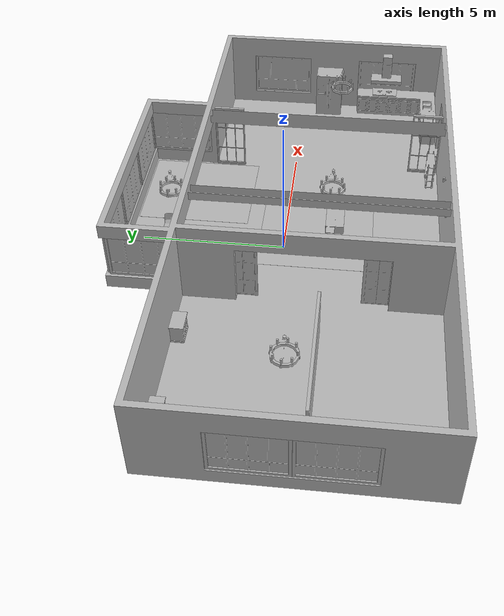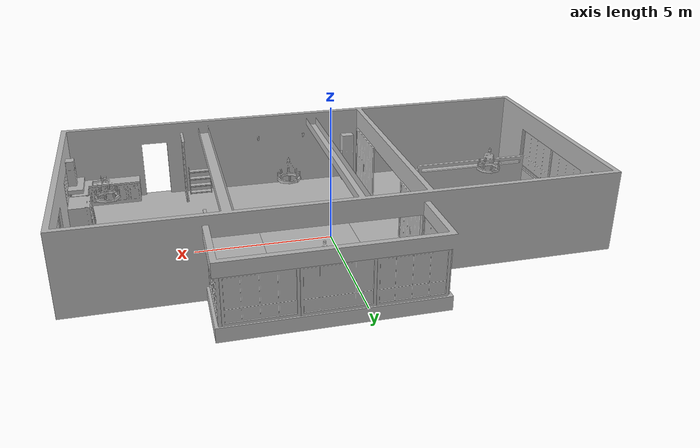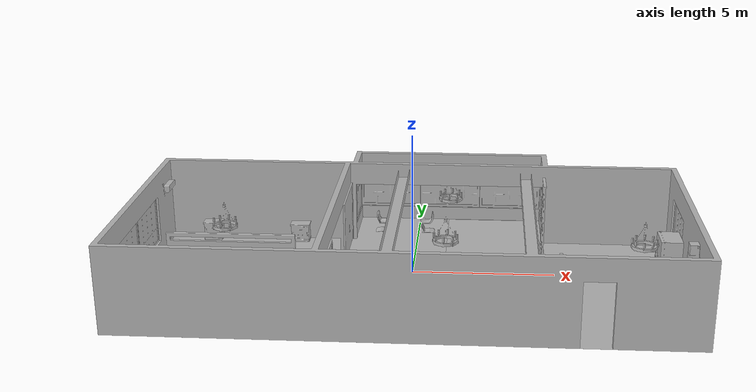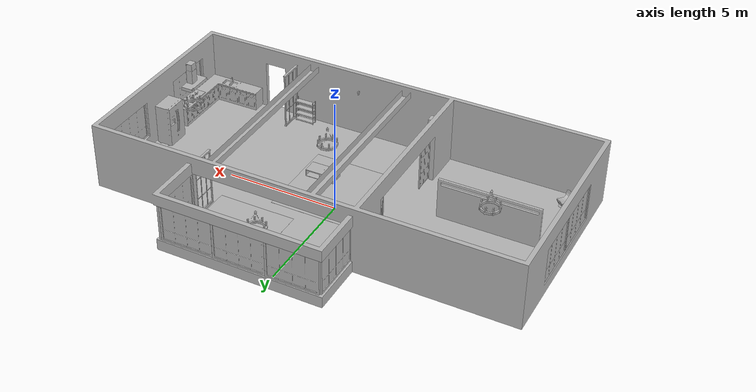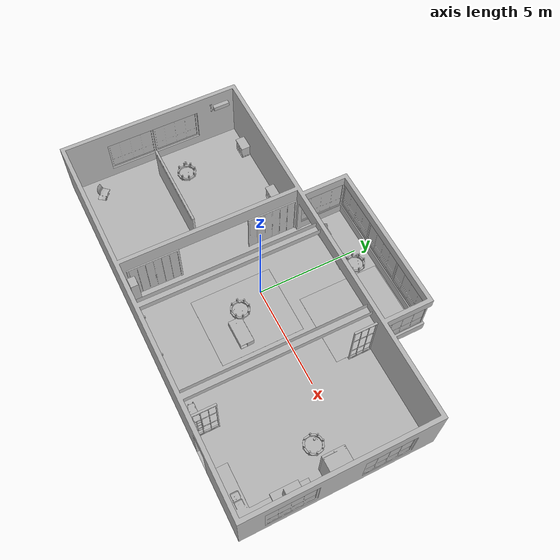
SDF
<sdf version="1.6">
 <world name="default">
  <gravity>0 0 -9.8</gravity>
  <magnetic_field>6e-06 2.3e-05 -4.2e-05</magnetic_field>
  <atmosphere type="adiabatic"/>
  <physics name="3ms" type="ignored">
   <max_step_size>0.003</max_step_size>
   <real_time_factor>1.0</real_time_factor>
   <real_time_update_rate>333</real_time_update_rate>
  </physics>
  <plugin filename="gz-sim-physics-system" name="gz::sim::systems::Physics"/>
  <plugin filename="gz-sim-user-commands-system" name="gz::sim::systems::UserCommands"/>
  <plugin filename="gz-sim-scene-broadcaster-system" name="gz::sim::systems::SceneBroadcaster"/>
  <plugin filename="gz-sim-imu-system" name="gz::sim::systems::Imu"/>
  <plugin filename="gz-sim-sensors-system" name="gz::sim::systems::Sensors">
   <render_engine>ogre2</render_engine>
  </plugin>
  <scene>
   <ambient>0.4 0.4 0.4 1</ambient>
   <background>0.7 0.7 0.7 1</background>
   <shadows>0</shadows>
   <grid>false</grid>
   <origin_visual>false</origin_visual>
  </scene>
  <spherical_coordinates>
   <surface_model>EARTH_WGS84</surface_model>
   <latitude_deg>0</latitude_deg>
   <longitude_deg>0</longitude_deg>
   <elevation>0</elevation>
   <heading_deg>0</heading_deg>
  </spherical_coordinates>
  <include>
   <name>AirconditionerA_01_001</name>
   <uri>model://aws_robomaker_residential_AirconditionerA_01</uri>
   <pose>-9.199410 2.411230 2.084544 0 -0 0</pose>
  </include>
  <include>
   <name>AirconditionerB_01_001</name>
   <uri>model://aws_robomaker_residential_AirconditionerB_01</uri>
   <pose>-2.004656 -5.226610 0.003485 0 -0 0</pose>
  </include>
  <include>
   <name>NightStand_01_001</name>
   <uri>model://aws_robomaker_residential_NightStand_01</uri>
   <pose>-7.725510 2.860420 0.005258 -0.000002 0 0</pose>
  </include>
  <include>
   <name>NightStand_01_002</name>
   <uri>model://aws_robomaker_residential_NightStand_01</uri>
   <pose>-4.407341 2.860420 0.005256 0 0.000002 0</pose>
  </include>
  <include>
   <name>ChairD_01_001</name>
   <uri>model://aws_robomaker_residential_ChairD_01</uri>
   <pose>-1.380775 4.104456 0 0 -0 0</pose>
  </include>
  <include>
   <name>ChairD_01_002</name>
   <uri>model://aws_robomaker_residential_ChairD_01</uri>
   <pose>0.325214 4.104456 0 0 -0 -3.138741</pose>
  </include>
  <include>
   <name>ChairD_01_003</name>
   <uri>model://aws_robomaker_residential_ChairD_01</uri>
   <pose>-8.270775 -4.504456 0 0 -0 0.869673</pose>
  </include>
  <include>
   <name>Chandelier_01_001</name>
   <uri>model://aws_robomaker_residential_Chandelier_01</uri>
   <pose>1.221061 4.155740 1.295000 0 -0 0</pose>
  </include>
  <include>
   <name>Chandelier_01_002</name>
   <uri>model://aws_robomaker_residential_Chandelier_01</uri>
   <pose>-6.451061 -0.692040 1.810000 0 -0 0</pose>
  </include>
  <include>
   <name>Chandelier_01_003</name>
   <uri>model://aws_robomaker_residential_Chandelier_01</uri>
   <pose>7.824061 -1.59 1.7510000 0 -0 0</pose>
  </include>
  <include>
   <name>Chandelier_01_004</name>
   <uri>model://aws_robomaker_residential_Chandelier_01</uri>
   <pose>1.221061 -1.592040 1.7873000 0 -0 0</pose>
  </include>
  <include>
   <name>Carpet_01_001</name>
   <uri>model://aws_robomaker_residential_Carpet_01</uri>
   <pose>0.785050 -1.106647 0.001106 0 -0 0</pose>
  </include>
  <include>
   <name>Carpet_01_002</name>
   <uri>model://aws_robomaker_residential_Carpet_01</uri>
   <pose>2.854050 3.45 0.000585 0 -0 0</pose>
  </include>
  <include>
   <name>CoffeeTable_01_001</name>
   <uri>model://aws_robomaker_residential_CoffeeTable_01</uri>
   <pose>1.512301 -1.733438 0.041983 0.000000 0.000000 0.01000</pose>
  </include>
  <include>
   <name>CookingBench_01_001</name>
   <uri>model://aws_robomaker_residential_CookingBench_01</uri>
   <pose>9.038383 -3.351140 0.903610 0 -0 3.137133</pose>
   <static>true</static>
  </include>
  <include>
   <name>FoldingDoor_01_001</name>
   <uri>model://aws_robomaker_residential_FoldingDoor_01</uri>
   <pose>-2.461096 1.844219 0.041881 0 -0 0</pose>
  </include>
  <include>
   <name>FoldingDoor_01_002</name>
   <uri>model://aws_robomaker_residential_FoldingDoor_01</uri>
   <pose>-2.461096 -4.053320 0.041881 0 -0 0</pose>
  </include>
  <include><name>HouseWallB_01_001</name><uri>model://aws_robomaker_residential_HouseWallB_01</uri></include>
  <include><name>FloorB_01_001</name><uri>model://aws_robomaker_residential_FloorB_01</uri></include>
  <include>
   <name>FoldingDoor_02_001</name>
   <uri>model://aws_robomaker_residential_FoldingDoor_02</uri>
   <pose>4.674231 2.46451 0 0 -0 3.14159</pose>
  </include>
  <include>
   <name>FoldingDoor_02_002</name>
   <uri>model://aws_robomaker_residential_FoldingDoor_02</uri>
   <pose>4.8912 -4.84968 0 0 -0 0</pose>
  </include>
  <include>
   <name>KitchenCabinet_01_001</name>
   <uri>model://aws_robomaker_residential_KitchenCabinet_01</uri>
   <pose>8.002009 -3.836509 0.012068 0 -0 -3.140001</pose>
  </include>
  <include>
   <name>LightC_01_001</name>
   <uri>model://aws_robomaker_residential_LightC_01</uri>
   <pose>1.769567 -5.4443710 2.000000 0 -0 0</pose>
  </include>
  <include>
   <name>LightC_01_002</name>
   <uri>model://aws_robomaker_residential_LightC_01</uri>
   <pose>-0.138245 -5.4443710 2.000000 0 -0 0</pose>
  </include>
  <include>
   <name>Rangehood_01_001</name>
   <uri>model://aws_robomaker_residential_Rangehood_01</uri>
   <pose>9.019794 -3.369940 1.507605 0 -0 0</pose>
  </include>
  <include>
   <name>Refrigerator_01_001</name>
   <uri>model://aws_robomaker_residential_Refrigerator_01</uri>
   <pose>8.702731 -1.032031 0 0 -0 -1.563499</pose>
  </include>
  <include>
   <name>ShoeRack_01_001</name>
   <uri>model://aws_robomaker_residential_ShoeRack_01</uri>
   <pose>4.297978 -5.173566 0 0 -0 0</pose>
  </include>
  <include>
   <name>RoomWall_01_001</name>
   <uri>model://aws_robomaker_residential_RoomWall_01</uri>
   <pose>-6.097550 -1.496180 0.028124 0 -0 0</pose>
  </include>
  <include>
   <name>RoomWindow_01_001</name>
   <uri>model://aws_robomaker_residential_RoomWindow_01</uri>
   <pose>-9.418600 -0.026285 0.502739 0 -0 0</pose>
  </include>
  <include>
   <name>RoomWindow_01_002</name>
   <uri>model://aws_robomaker_residential_RoomWindow_01</uri>
   <pose>-9.418600 -2.374090 0.502739 0 -0 0</pose>
  </include>
  <include>
   <name>RoomWindow_01_003</name>
   <uri>model://aws_robomaker_residential_RoomWindow_01</uri>
   <pose>9.422616 -3.373981 0.502739 0 -0 -3.136099</pose>
  </include>
  <include>
   <name>RoomWindow_01_004</name>
   <uri>model://aws_robomaker_residential_RoomWindow_01</uri>
   <pose>9.422558 0.968520 0.496581 0 -0 -3.136099</pose>
  </include>
  <include>
   <name>RoomWindow_01_005</name>
   <uri>model://aws_robomaker_residential_RoomWindow_01</uri>
   <pose>4.722317 4.470281 0.502739 0 -0 -3.136099</pose>
  </include>
  <include>
   <name>RoomWindow_01_006</name>
   <uri>model://aws_robomaker_residential_RoomWindow_01</uri>
   <pose>3.488520 5.600688 0.502739 0 -0 -1.566274</pose>
  </include>
  <include>
   <name>RoomWindow_01_007</name>
   <uri>model://aws_robomaker_residential_RoomWindow_01</uri>
   <pose>1.140949 5.600688 0.502739 0 -0 -1.566274</pose>
  </include>
  <include>
   <name>RoomWindow_01_008</name>
   <uri>model://aws_robomaker_residential_RoomWindow_01</uri>
   <pose>-1.199340 5.600688 0.502739 0 -0 -1.566274</pose>
  </include>
  <include>
   <name>RoomWindow_01_009</name>
   <uri>model://aws_robomaker_residential_RoomWindow_01</uri>
   <pose>-2.396624 4.387607 0.502739 0 -0 0</pose>
  </include>
  <light name="LivingRoom_CeilingLight_0" type="point">
   <pose>1.194296 4.155759 2.2 0 -0 0</pose>
   <diffuse>0.5 0.5 0.5 1</diffuse>
   <specular>0.1 0.1 0.1 1</specular>
   <attenuation>
    <range>20</range>
    <constant>0.32</constant>
    <linear>0.01</linear>
    <quadratic>0.03</quadratic>
   </attenuation>
   <cast_shadows>0</cast_shadows>
   <direction>0 0 -1</direction>
  </light>
  <light name="LivingRoom_CeilingLight_1" type="point">
   <pose>1.194296 -1.589959 2.2 0 -0 0</pose>
   <diffuse>0.5 0.5 0.5 1</diffuse>
   <specular>0.1 0.1 0.1 1</specular>
   <attenuation>
    <range>20</range>
    <constant>0.05</constant>
    <linear>0.01</linear>
    <quadratic>0.09</quadratic>
   </attenuation>
   <cast_shadows>0</cast_shadows>
   <direction>0 0 -1</direction>
  </light>
  <light name="LivingRoom_WallLight_0" type="point">
   <pose>1.76956 -5.444370 2.2 0 -0 0</pose>
   <diffuse>0.24 0.24 0.24 1</diffuse>
   <specular>0.1 0.1 0.1 1</specular>
   <attenuation>
    <range>20</range>
    <constant>0.12</constant>
    <linear>0.00</linear>
    <quadratic>0.03</quadratic>
   </attenuation>
   <direction>0 0 -1</direction>
  </light>
  <light name="LivingRoom_WallLight_1" type="point">
   <pose>-0.13826 -5.444370 2.2 0 -0 0</pose>
   <diffuse>0.24 0.24 0.24 1</diffuse>
   <specular>0.1 0.1 0.1 1</specular>
   <attenuation>
    <range>20</range>
    <constant>0.12</constant>
    <linear>0.00</linear>
    <quadratic>0.03</quadratic>
   </attenuation>
   <direction>0 0 -1</direction>
  </light>
  <light name="TV_Light_0" type="point">
   <pose>0.8269 -4.939577 1.1 0 -0 0</pose>
   <diffuse>0.31372 0.31372 0.34901 1</diffuse>
   <specular>0.1 0.1 0.1 1</specular>
   <attenuation>
    <range>3</range>
    <constant>0.10</constant>
    <linear>0.04</linear>
    <quadratic>0.50</quadratic>
   </attenuation>
   <direction>0 0 -1</direction>
  </light>
  <light name="BedRoom_Portrait_Light_0" type="spot">
   <pose>-6.190379 -1.829697 1.5587 0.3 -0 0.0</pose>
   <diffuse>0.5 0.5 0.5 1</diffuse>
   <specular>0.1 0.1 0.1 1</specular>
   <attenuation>
    <range>20</range>
    <constant>0.50</constant>
    <linear>0.01</linear>
    <quadratic>0.00</quadratic>
   </attenuation>
   <spot><inner_angle>0.6</inner_angle><outer_angle>1.0</outer_angle><falloff>1.0</falloff></spot>
   <direction>0 0 -1</direction>
  </light>
  <light name="BedRoom_CeilingLight_0" type="point">
   <pose>-6.451061 -0.692040 2.000000 0 -0 0</pose>
   <diffuse>0.5 0.5 0.5 1</diffuse>
   <specular>0.1 0.1 0.1 1</specular>
   <attenuation>
    <range>20</range>
    <constant>0.32</constant>
    <linear>0.01</linear>
    <quadratic>0.03</quadratic>
   </attenuation>
   <cast_shadows>0</cast_shadows>
   <direction>0 0 -1</direction>
  </light>
  <light name="Kitchen_CeilingLight_0" type="point">
   <pose>7.8582 -1.5905 2.280000 0 -0 0</pose>
   <diffuse>0.5 0.5 0.5 1</diffuse>
   <specular>0.1 0.1 0.1 1</specular>
   <attenuation>
    <range>20</range>
    <constant>0.3</constant>
    <linear>0.01</linear>
    <quadratic>0.01</quadratic>
   </attenuation>
   <cast_shadows>0</cast_shadows>
   <direction>0 0 -1</direction>
  </light>
 </world>
</sdf>

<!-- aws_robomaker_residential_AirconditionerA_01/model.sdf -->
<sdf version="1.6">
  <model name="aws_robomaker_residential_AirconditionerA_01">
    <link name="link">
            <inertial>
        <mass>1.0</mass>
        <inertia>
          <ixx>0.1</ixx>
          <ixy>0</ixy>
          <ixz>0</ixz>
          <iyy>0.1</iyy>
          <iyz>0</iyz>
          <izz>0.1</izz>
        </inertia>
      </inertial>
      <collision name="collision">
        <geometry>
          <mesh>
            <uri>model://aws_robomaker_residential_AirconditionerA_01/meshes/aws_AirconditionerA_01_collision.DAE</uri>
            <scale>1 1 1</scale>
          </mesh>
        </geometry>
      </collision>
      <visual name="visual">
	    <geometry>
          <mesh>
            <uri>model://aws_robomaker_residential_AirconditionerA_01/meshes/aws_AirconditionerA_01_visual.DAE</uri>
          </mesh>
        </geometry>
      <meta> <layer> 1 </layer></meta>
</visual>
    </link>
	<static>1</static>
  </model>
</sdf>

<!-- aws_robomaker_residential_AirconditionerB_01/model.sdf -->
<sdf version="1.6">
  <model name="aws_robomaker_residential_AirconditionerB_01">
    <link name="link">
            <inertial>
        <mass>1.0</mass>
        <inertia>
          <ixx>0.1</ixx>
          <ixy>0</ixy>
          <ixz>0</ixz>
          <iyy>0.1</iyy>
          <iyz>0</iyz>
          <izz>0.1</izz>
        </inertia>
      </inertial>
      <collision name="collision">
        <geometry>
          <mesh>
            <uri>model://aws_robomaker_residential_AirconditionerB_01/meshes/aws_AirconditionerB_01_collision.DAE</uri>
            <scale>1 1 1</scale>
          </mesh>
        </geometry>
      </collision>
      <visual name="visual">
	    <geometry>
          <mesh>
            <uri>model://aws_robomaker_residential_AirconditionerB_01/meshes/aws_AirconditionerB_01_visual.DAE</uri>
          </mesh>
        </geometry>
      <meta> <layer> 1 </layer></meta>
</visual>
    </link>
  </model>
</sdf>

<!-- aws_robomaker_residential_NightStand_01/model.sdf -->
<sdf version="1.6">
  <model name="aws_robomaker_residential_NightStand_01">
    <link name="link">
            <inertial>
        <mass>1.0</mass>
        <inertia>
          <ixx>0.1</ixx>
          <ixy>0</ixy>
          <ixz>0</ixz>
          <iyy>0.1</iyy>
          <iyz>0</iyz>
          <izz>0.1</izz>
        </inertia>
      </inertial>
      <collision name="collision">
        <geometry>
          <mesh>
            <uri>model://aws_robomaker_residential_NightStand_01/meshes/aws_NightStand_01_collision.DAE</uri>
            <scale>1 1 1</scale>
          </mesh>
        </geometry>
      </collision>
      <visual name="visual">
	    <geometry>
          <mesh>
            <uri>model://aws_robomaker_residential_NightStand_01/meshes/aws_NightStand_01_visual.DAE</uri>
          </mesh>
        </geometry>
      <meta> <layer> 1 </layer></meta>
</visual>
    </link>
    <static>1</static>
  </model>
</sdf>

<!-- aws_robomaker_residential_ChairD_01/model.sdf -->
<sdf version="1.6">
  <model name="aws_robomaker_residential_ChairD_01">
    <link name="link">

            <inertial>
        <mass>1.0</mass>
        <inertia>
          <ixx>0.1</ixx>
          <ixy>0</ixy>
          <ixz>0</ixz>
          <iyy>0.1</iyy>
          <iyz>0</iyz>
          <izz>0.1</izz>
        </inertia>
      </inertial>

      <collision name="collision">

        <geometry>
          <mesh>
            <uri>model://aws_robomaker_residential_ChairD_01/meshes/aws_ChairD_01_collision.DAE</uri>
            <scale>1 1 1</scale>
          </mesh>
        </geometry>

      </collision>
      <visual name="visual">
	    <geometry>
          <mesh>
            <uri>model://aws_robomaker_residential_ChairD_01/meshes/aws_ChairD_01_visual.DAE</uri>
          </mesh>
        </geometry>
      <meta> <layer> 1 </layer></meta>
</visual>
    </link>
  </model>
</sdf>

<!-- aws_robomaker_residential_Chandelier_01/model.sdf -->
<sdf version="1.6">
  <model name="aws_robomaker_residential_Chandelier_01">
    <link name="link">
            <inertial>
        <mass>1.0</mass>
        <inertia>
          <ixx>0.1</ixx>
          <ixy>0</ixy>
          <ixz>0</ixz>
          <iyy>0.1</iyy>
          <iyz>0</iyz>
          <izz>0.1</izz>
        </inertia>
      </inertial>
      <collision name="collision">
        <geometry>
          <mesh>
            <uri>model://aws_robomaker_residential_Chandelier_01/meshes/aws_Chandelier_01_collision.DAE</uri>
            <scale>1 1 1</scale>
          </mesh>
        </geometry>
      </collision>
      <visual name="visual">
	    <geometry>
          <mesh>
            <uri>model://aws_robomaker_residential_Chandelier_01/meshes/aws_Chandelier_01_visual.DAE</uri>
          </mesh>
        </geometry>
      <meta> <layer> 2 </layer></meta>
</visual>
    </link>
	<static>1</static>
  </model>
</sdf>

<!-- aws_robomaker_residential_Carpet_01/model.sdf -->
<sdf version="1.6">
  <model name="aws_robomaker_residential_Carpet_01">
    <link name="link">
            <inertial>
        <mass>1.0</mass>
        <inertia>
          <ixx>0.1</ixx>
          <ixy>0</ixy>
          <ixz>0</ixz>
          <iyy>0.1</iyy>
          <iyz>0</iyz>
          <izz>0.1</izz>
        </inertia>
      </inertial>

      <collision name="collision">

        <geometry>
          <mesh>
            <uri>model://aws_robomaker_residential_Carpet_01/meshes/aws_Carpet_01_collision.DAE</uri>
            <scale>1 1 0.95</scale>
          </mesh>
        </geometry>

        <surface>
          <contact>
            <ode>
            </ode>
          </contact>
        </surface>

        <pose>0 0 -0.01 0 0 0 </pose>
      </collision>

      <visual name="visual">
	    <geometry>
          <mesh>
            <uri>model://aws_robomaker_residential_Carpet_01/meshes/aws_Carpet_01_visual.DAE</uri>
          </mesh>
        </geometry>
      <meta> <layer> 1 </layer></meta>
</visual>
    </link>

    <static>1</static>

  </model>
</sdf>

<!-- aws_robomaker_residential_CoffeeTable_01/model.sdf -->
<sdf version="1.6">
  <model name="aws_robomaker_residential_CoffeeTable_01">
    <link name="link">
            <inertial>
        <mass>1.0</mass>
        <inertia>
          <ixx>0.1</ixx>
          <ixy>0</ixy>
          <ixz>0</ixz>
          <iyy>0.1</iyy>
          <iyz>0</iyz>
          <izz>0.1</izz>
        </inertia>
      </inertial>

      <collision name="collision">
        <geometry>
          <mesh>
            <uri>model://aws_robomaker_residential_CoffeeTable_01/meshes/aws_CoffeeTable_01_collision.DAE</uri>
            <scale>1 1 1</scale>
          </mesh>
        </geometry>

        <surface>
          <contact>
            <ode>
              <max_vel>0.01</max_vel>
            </ode>
          </contact>
         </surface>
      </collision>

      <visual name="visual">
	    <geometry>
          <mesh>
            <uri>model://aws_robomaker_residential_CoffeeTable_01/meshes/aws_CoffeeTable_01_visual.DAE</uri>
          </mesh>
        </geometry>
      <meta> <layer> 1 </layer></meta>
</visual>
    </link>
    <static>1</static>
  </model>
</sdf>

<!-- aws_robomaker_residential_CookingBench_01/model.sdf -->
<sdf version="1.6">
  <model name="aws_robomaker_residential_CookingBench_01">
    <link name="link">
            <inertial>
        <mass>1.0</mass>
        <inertia>
          <ixx>0.1</ixx>
          <ixy>0</ixy>
          <ixz>0</ixz>
          <iyy>0.1</iyy>
          <iyz>0</iyz>
          <izz>0.1</izz>
        </inertia>
      </inertial>
      <collision name="collision">
        <geometry>
          <mesh>
            <uri>model://aws_robomaker_residential_CookingBench_01/meshes/aws_CookingBench_01_collision.DAE</uri>
            <scale>1 1 1</scale>
          </mesh>
        </geometry>
      </collision>
      <visual name="visual">
	    <geometry>
          <mesh>
            <uri>model://aws_robomaker_residential_CookingBench_01/meshes/aws_CookingBench_01_visual.DAE</uri>
          </mesh>
        </geometry>
      <meta> <layer> 1 </layer></meta>
</visual>
    </link>
  </model>
</sdf>

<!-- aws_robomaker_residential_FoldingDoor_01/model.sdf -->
<sdf version="1.6">
  <model name="aws_robomaker_residential_FoldingDoor_01">
    <link name="link">
            <inertial>
        <mass>1.0</mass>
        <inertia>
          <ixx>0.1</ixx>
          <ixy>0</ixy>
          <ixz>0</ixz>
          <iyy>0.1</iyy>
          <iyz>0</iyz>
          <izz>0.1</izz>
        </inertia>
      </inertial>
      <collision name="collision">
        <geometry>
          <mesh>
            <uri>model://aws_robomaker_residential_FoldingDoor_01/meshes/aws_FoldingDoor_01_collision.DAE</uri>
            <scale>1 1 1</scale>
          </mesh>
        </geometry>
      </collision>
      <visual name="visual">
	    <geometry>
          <mesh>
            <uri>model://aws_robomaker_residential_FoldingDoor_01/meshes/aws_FoldingDoor_01_visual.DAE</uri>
          </mesh>
        </geometry>
      <meta> <layer> 2 </layer></meta>
</visual>
    </link>
	<static>1</static>
  </model>
</sdf>

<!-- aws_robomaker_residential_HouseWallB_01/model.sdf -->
<sdf version="1.6">
  <model name="aws_robomaker_residential_HouseWallB_01">
    <link name="link">
            <inertial>
        <mass>1.0</mass>
        <inertia>
          <ixx>0.1</ixx>
          <ixy>0</ixy>
          <ixz>0</ixz>
          <iyy>0.1</iyy>
          <iyz>0</iyz>
          <izz>0.1</izz>
        </inertia>
      </inertial>
      <collision name="collision">
        <geometry>
          <mesh>
            <uri>model://aws_robomaker_residential_HouseWallB_01/meshes/aws_HouseWallB_01_collision.DAE</uri>
            <scale>1 1 1</scale>
          </mesh>
        </geometry>
      </collision>
      <visual name="visual">
	    <geometry>
          <mesh>
            <uri>model://aws_robomaker_residential_HouseWallB_01/meshes/aws_HouseWallB_01_visual.DAE</uri>
          </mesh>
        </geometry>
      <meta> <layer> 2 </layer></meta>
</visual>
    </link>
<static>1</static>
  </model>
</sdf>

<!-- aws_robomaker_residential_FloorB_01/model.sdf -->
<sdf version="1.6">
  <model name="aws_robomaker_residential_FloorB_01">
    <link name="link">
            <inertial>
        <mass>1.0</mass>
        <inertia>
          <ixx>0.1</ixx>
          <ixy>0</ixy>
          <ixz>0</ixz>
          <iyy>0.1</iyy>
          <iyz>0</iyz>
          <izz>0.1</izz>
        </inertia>
      </inertial>

      <collision name="collision">
        <geometry>
          <mesh>
            <uri>model://aws_robomaker_residential_FloorB_01/meshes/aws_FloorB_01_collision.DAE</uri>
            <scale>1 1 0.9</scale>
          </mesh>
        </geometry>

        <surface>

        <!--
        src: https://www.engineeringtoolbox.com/friction-coefficients-d_778.html
        Wood (Clean & Dry Surfaces): 0.6
        -->
          <friction>
            <ode>
              <mu>0.6</mu>
              <mu2>0.6</mu2>
            </ode>
          </friction>

        </surface>

      </collision>

      <visual name="visual">
	    <geometry>
          <mesh>
            <uri>model://aws_robomaker_residential_FloorB_01/meshes/aws_FloorB_01_visual.DAE</uri>
          </mesh>
        </geometry>
      <meta> <layer> 1 </layer></meta>
</visual>
    </link>

	<static>1</static>
  </model>
</sdf>

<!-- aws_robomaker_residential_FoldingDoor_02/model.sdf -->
<sdf version="1.6">
  <model name="aws_robomaker_residential_FoldingDoor_02">
    <link name="link">
            <inertial>
        <mass>1.0</mass>
        <inertia>
          <ixx>0.1</ixx>
          <ixy>0</ixy>
          <ixz>0</ixz>
          <iyy>0.1</iyy>
          <iyz>0</iyz>
          <izz>0.1</izz>
        </inertia>
      </inertial>
      <collision name="collision">
        <geometry>
          <mesh>
            <uri>model://aws_robomaker_residential_FoldingDoor_02/meshes/aws_FoldingDoor_02_collision.DAE</uri>
            <scale>1 1 1</scale>
          </mesh>
        </geometry>
      </collision>
      <visual name="visual">
	    <geometry>
          <mesh>
            <uri>model://aws_robomaker_residential_FoldingDoor_02/meshes/aws_FoldingDoor_02_visual.DAE</uri>
          </mesh>
        </geometry>
      <meta> <layer> 2 </layer></meta>
</visual>
    </link>
<static>1</static>
  </model>
</sdf>

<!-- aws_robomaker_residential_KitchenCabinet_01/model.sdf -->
<sdf version="1.6">
  <model name="aws_robomaker_residential_KitchenCabinet_01">
    <link name="link">
            <inertial>
        <mass>1.0</mass>
        <inertia>
          <ixx>0.1</ixx>
          <ixy>0</ixy>
          <ixz>0</ixz>
          <iyy>0.1</iyy>
          <iyz>0</iyz>
          <izz>0.1</izz>
        </inertia>
      </inertial>
      <collision name="collision">
        <laser_retro>0</laser_retro>
        <max_contacts>10</max_contacts>
        <geometry>
          <mesh>
            <uri>model://aws_robomaker_residential_KitchenCabinet_01/meshes/aws_KitchenCabinet_01_collision.DAE</uri>
            <scale>1 1 1</scale>
          </mesh>
        </geometry>
      </collision>
      <visual name="visual">
	    <geometry>
          <mesh>
            <uri>model://aws_robomaker_residential_KitchenCabinet_01/meshes/aws_KitchenCabinet_01_visual.DAE</uri>
          </mesh>
        </geometry>
      <meta> <layer> 1 </layer></meta>
</visual>
    </link>

    <static>1</static>
  </model>
</sdf>

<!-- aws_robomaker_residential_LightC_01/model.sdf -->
<sdf version="1.6">
  <model name="aws_robomaker_residential_LightC_01">
    <link name="link">
            <inertial>
        <mass>1.0</mass>
        <inertia>
          <ixx>0.1</ixx>
          <ixy>0</ixy>
          <ixz>0</ixz>
          <iyy>0.1</iyy>
          <iyz>0</iyz>
          <izz>0.1</izz>
        </inertia>
      </inertial>
      <collision name="collision">
        <geometry>
          <mesh>
            <uri>model://aws_robomaker_residential_LightC_01/meshes/aws_LightC_01_collision.DAE</uri>
            <scale>1 1 1</scale>
          </mesh>
        </geometry>
      </collision>
      <visual name="visual">
	    <geometry>
          <mesh>
            <uri>model://aws_robomaker_residential_LightC_01/meshes/aws_LightC_01_visual.DAE</uri>
          </mesh>
        </geometry>
      <meta> <layer> 2 </layer></meta>
</visual>
    </link>
	<static>1</static>
  </model>
</sdf>

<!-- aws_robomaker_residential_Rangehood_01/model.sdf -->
<sdf version="1.6">
  <model name="aws_robomaker_residential_Rangehood_01">
    <link name="link">
            <inertial>
        <mass>1.0</mass>
        <inertia>
          <ixx>0.1</ixx>
          <ixy>0</ixy>
          <ixz>0</ixz>
          <iyy>0.1</iyy>
          <iyz>0</iyz>
          <izz>0.1</izz>
        </inertia>
      </inertial>
      <collision name="collision">
        <geometry>
          <mesh>
            <uri>model://aws_robomaker_residential_Rangehood_01/meshes/aws_Rangehood_01_collision.DAE</uri>
            <scale>1 1 1</scale>
          </mesh>
        </geometry>
      </collision>
      <visual name="visual">
	    <geometry>
          <mesh>
            <uri>model://aws_robomaker_residential_Rangehood_01/meshes/aws_Rangehood_01_visual.DAE</uri>
          </mesh>
        </geometry>
      <meta> <layer> 2 </layer></meta>
</visual>
    </link>
	<static>1</static>
  </model>
</sdf>

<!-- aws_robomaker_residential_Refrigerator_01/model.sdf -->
<sdf version="1.6">
  <model name="aws_robomaker_residential_Refrigerator_01">
    <link name="link">
            <inertial>
        <mass>1.0</mass>
        <inertia>
          <ixx>0.1</ixx>
          <ixy>0</ixy>
          <ixz>0</ixz>
          <iyy>0.1</iyy>
          <iyz>0</iyz>
          <izz>0.1</izz>
        </inertia>
      </inertial>
      <collision name="collision">
        <geometry>
          <mesh>
            <uri>model://aws_robomaker_residential_Refrigerator_01/meshes/aws_Refrigerator_01_collision.DAE</uri>
            <scale>1 1 1</scale>
          </mesh>
        </geometry>
      </collision>
      <visual name="visual">
	    <geometry>
          <mesh>
            <uri>model://aws_robomaker_residential_Refrigerator_01/meshes/aws_Refrigerator_01_visual.DAE</uri>
          </mesh>
        </geometry>
      <meta> <layer> 1 </layer></meta>
</visual>
    </link>
    <static>1</static>
  </model>
</sdf>

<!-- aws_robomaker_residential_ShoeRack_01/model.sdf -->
<sdf version="1.6">
  <model name="aws_robomaker_residential_ShoeRack_01">
    <link name="link">

            <inertial>
        <mass>1.0</mass>
        <inertia>
          <ixx>0.1</ixx>
          <ixy>0</ixy>
          <ixz>0</ixz>
          <iyy>0.1</iyy>
          <iyz>0</iyz>
          <izz>0.1</izz>
        </inertia>
      </inertial>

      <collision name="collision">

        <geometry>
          <mesh>
            <uri>model://aws_robomaker_residential_ShoeRack_01/meshes/aws_ShoeRack_01_collision.DAE</uri>
            <scale>1 1 1</scale>
          </mesh>
        </geometry>

        <surface>
          <friction>
            <ode>
              <mu>0.2</mu>
              <mu2>0.2</mu2>
            </ode>
          </friction>

          <contact>
            <ode>
              <kd>2500</kd>
            </ode>
          </contact>

        </surface>

      </collision>

      <visual name="visual">
	    <geometry>
          <mesh>
            <uri>model://aws_robomaker_residential_ShoeRack_01/meshes/aws_ShoeRack_01_visual.DAE</uri>
          </mesh>
        </geometry>
      <meta> <layer> 1 </layer></meta>
</visual>

    </link>
  </model>
</sdf>

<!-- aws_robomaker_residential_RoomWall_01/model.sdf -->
<sdf version="1.6">
  <model name="aws_robomaker_residential_RoomWall_01">
    <link name="link">
            <inertial>
        <mass>1.0</mass>
        <inertia>
          <ixx>0.1</ixx>
          <ixy>0</ixy>
          <ixz>0</ixz>
          <iyy>0.1</iyy>
          <iyz>0</iyz>
          <izz>0.1</izz>
        </inertia>
      </inertial>
      <collision name="collision">
        <geometry>
          <mesh>
            <uri>model://aws_robomaker_residential_RoomWall_01/meshes/aws_RoomWall_01_collision.DAE</uri>
            <scale>1 1 1</scale>
          </mesh>
        </geometry>
      </collision>
      <visual name="visual">
	    <geometry>
          <mesh>
            <uri>model://aws_robomaker_residential_RoomWall_01/meshes/aws_RoomWall_01_visual.DAE</uri>
          </mesh>
        </geometry>
      <meta> <layer> 2 </layer></meta>
</visual>
    </link>
  <static>1</static>
  </model>
</sdf>

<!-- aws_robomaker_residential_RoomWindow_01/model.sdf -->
<sdf version="1.6">
  <model name="aws_robomaker_residential_RoomWindow_01">
    <link name="link">
            <inertial>
        <mass>1.0</mass>
        <inertia>
          <ixx>0.1</ixx>
          <ixy>0</ixy>
          <ixz>0</ixz>
          <iyy>0.1</iyy>
          <iyz>0</iyz>
          <izz>0.1</izz>
        </inertia>
      </inertial>
      <collision name="collision">
        <geometry>
          <mesh>
            <uri>model://aws_robomaker_residential_RoomWindow_01/meshes/aws_RoomWindow_01_collision.DAE</uri>
            <scale>1 1 1</scale>
          </mesh>
        </geometry>
      </collision>
      <visual name="visual">
	    <geometry>
          <mesh>
            <uri>model://aws_robomaker_residential_RoomWindow_01/meshes/aws_RoomWindow_01_visual.DAE</uri>
          </mesh>
        </geometry>
      <meta> <layer> 2 </layer></meta>
</visual>
    </link>
	<static>1</static>
  </model>
</sdf>
